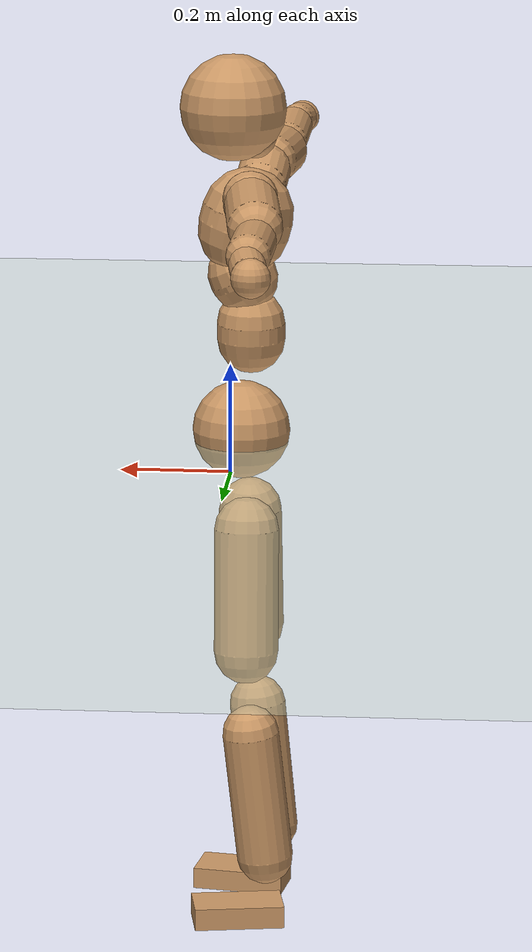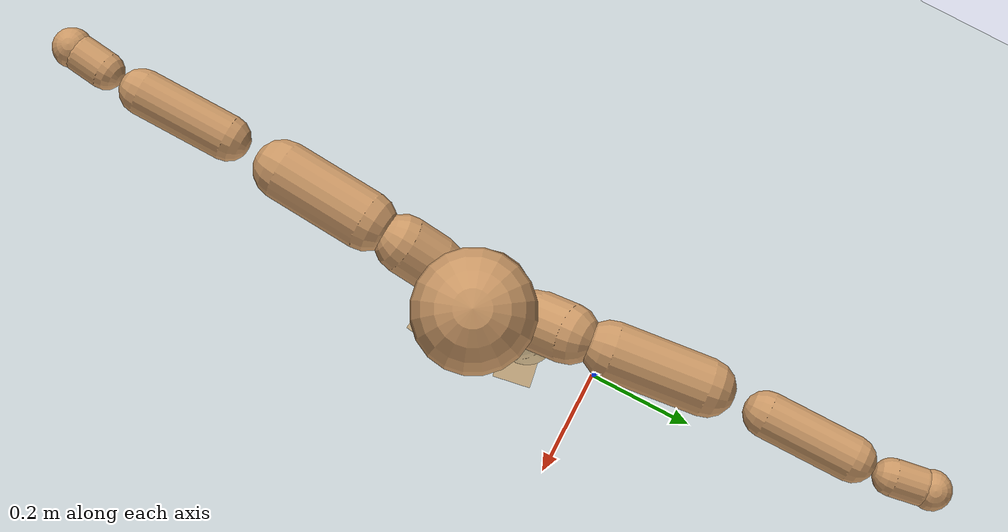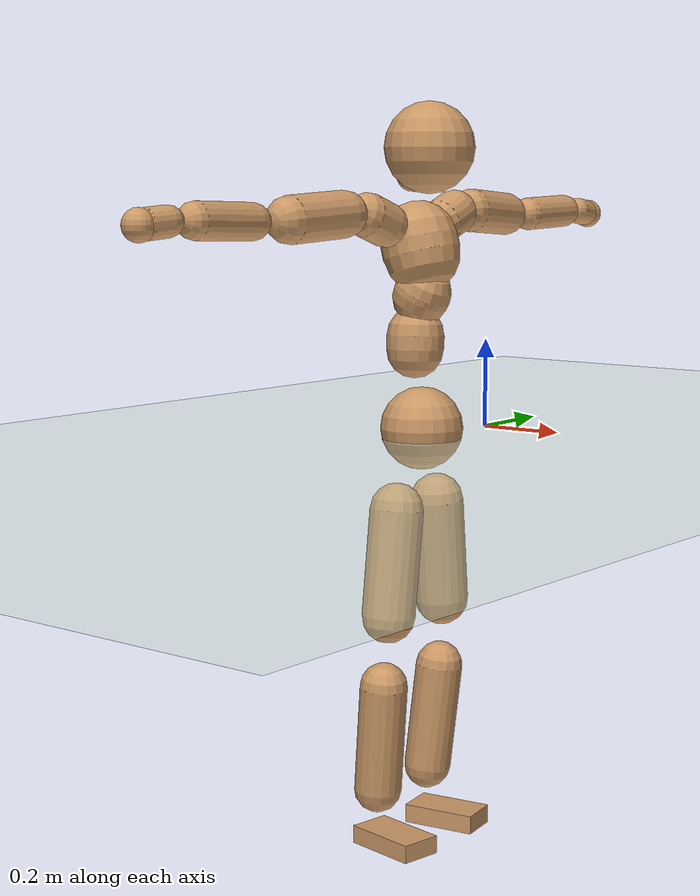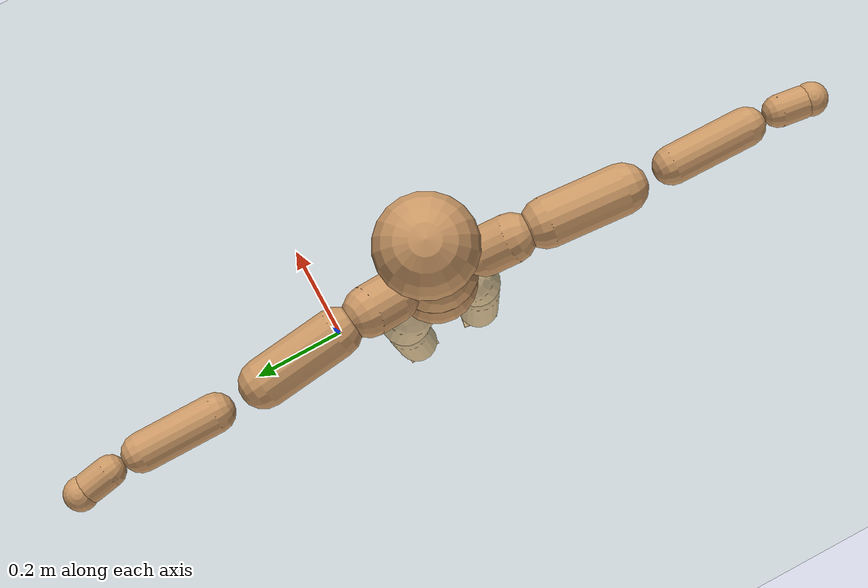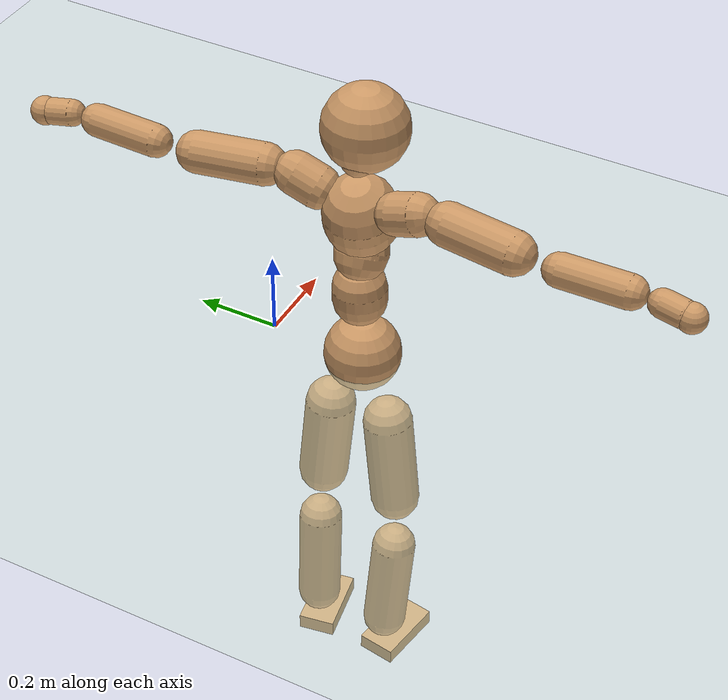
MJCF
<mujoco model="humanoid">
  <compiler coordinate="local"/>
  <default>
    <joint damping="0.0" armature="0.01" stiffness="0.0" limited="true"/>
    <geom conaffinity="1" condim="3" contype="7" margin="0.001" rgba="0.8 0.6 .4 1"/>
  </default>
  <asset>
    <texture type="skybox" builtin="gradient" rgb1=".4 .5 .6" rgb2="0 0 0" width="100" height="100"/>
    <texture builtin="flat" height="1278" mark="cross" markrgb="1 1 1" name="texgeom" random="0.01" rgb1="0.8 0.6 0.4" rgb2="0.8 0.6 0.4" type="cube" width="127"/>
    <texture builtin="checker" height="100" name="texplane" rgb1="0 0 0" rgb2="0.8 0.8 0.8" type="2d" width="100"/>
    <material name="MatPlane" reflectance="0.5" shininess="1" specular="1" texrepeat="60 60" texture="texplane"/>
    <material name="geom" texture="texgeom" texuniform="true"/>
  </asset>
  <worldbody>
    <light cutoff="100" diffuse="1 1 1" dir="-0 0 -1.3" directional="true" exponent="1" pos="0 0 1.3" specular=".1 .1 .1"/>
    <geom conaffinity="1" condim="3" name="floor" pos="0 0 0" rgba="0.8 0.9 0.8 1" size="100 100 .2" type="plane" material="MatPlane"/>
    <body name="Pelvis" pos="-0.0029 -0.2372 0.0203">
      <freejoint name="Pelvis"/>
      <geom type="sphere" contype="1" conaffinity="1" density="500" size="0.0918" pos="0.0000 0.0000 0.0000" name="Pelvis"/>
      <body name="L_Hip" pos="-0.015 0.0692 -0.0957">
        <joint name="L_Hip_x" type="hinge" pos="0 0 0" axis="1 0 0" stiffness="800" damping="80" armature="0.02" range="-180.0000 180.0000"/>
        <joint name="L_Hip_y" type="hinge" pos="0 0 0" axis="0 1 0" stiffness="800" damping="80" armature="0.02" range="-180.0000 180.0000"/>
        <joint name="L_Hip_z" type="hinge" pos="0 0 0" axis="0 0 1" stiffness="800" damping="80" armature="0.02" range="-180.0000 180.0000"/>
        <geom type="capsule" contype="1" conaffinity="1" density="500" fromto="-0.0003 0.0071 -0.0777 -0.0014 0.0286 -0.3109" size="0.0603" name="L_Hip"/>
        <body name="L_Knee" pos="-0.0017 0.0357 -0.3886">
          <joint name="L_Knee_x" type="hinge" pos="0 0 0" axis="1 0 0" stiffness="800" damping="80" armature="0.02" range="-180.0000 180.0000"/>
          <joint name="L_Knee_y" type="hinge" pos="0 0 0" axis="0 1 0" stiffness="800" damping="80" armature="0.02" range="-180.0000 180.0000"/>
          <joint name="L_Knee_z" type="hinge" pos="0 0 0" axis="0 0 1" stiffness="800" damping="80" armature="0.02" range="-180.0000 180.0000"/>
          <geom type="capsule" contype="1" conaffinity="1" density="500" fromto="-0.0091 -0.0028 -0.0824 -0.0363 -0.0110 -0.3294" size="0.0536" name="L_Knee"/>
          <body name="L_Ankle" pos="-0.0453 -0.0138 -0.4118">
            <joint name="L_Ankle_x" type="hinge" pos="0 0 0" axis="1 0 0" stiffness="800" damping="80" armature="0.02" range="-180.0000 180.0000"/>
            <joint name="L_Ankle_y" type="hinge" pos="0 0 0" axis="0 1 0" stiffness="800" damping="80" armature="0.02" range="-180.0000 180.0000"/>
            <joint name="L_Ankle_z" type="hinge" pos="0 0 0" axis="0 0 1" stiffness="800" damping="80" armature="0.02" range="-180.0000 180.0000"/>
            <geom type="box" contype="1" conaffinity="1" density="500" pos="0.0606 0.0101 -0.0288" size="0.0852 0.0457 0.0211" quat="0.9966 0.0000 0.0000 0.0826" name="L_Ankle"/>
            <body name="L_Toe" pos="0.1212 0.0202 -0.0576">
              <joint name="L_Toe_x" type="hinge" pos="0 0 0" axis="1 0 0" stiffness="500" damping="50" armature="0.02" range="-180.0000 180.0000"/>
              <joint name="L_Toe_y" type="hinge" pos="0 0 0" axis="0 1 0" stiffness="500" damping="50" armature="0.02" range="-180.0000 180.0000"/>
              <joint name="L_Toe_z" type="hinge" pos="0 0 0" axis="0 0 1" stiffness="500" damping="50" armature="0.02" range="-180.0000 180.0000"/>
              <geom type="box" contype="1" conaffinity="1" density="500" pos="0.0000 0.0000 0.0286" size="0.0009 0.0023 0.001" quat="0.9960 0.0000 0.0000 0.0892" name="L_Toe"/>
            </body>
          </body>
        </body>
      </body>
      <body name="R_Hip" pos="-0.0108 -0.0658 -0.0949">
        <joint name="R_Hip_x" type="hinge" pos="0 0 0" axis="1 0 0" stiffness="800" damping="80" armature="0.02" range="-180.0000 180.0000"/>
        <joint name="R_Hip_y" type="hinge" pos="0 0 0" axis="0 1 0" stiffness="800" damping="80" armature="0.02" range="-180.0000 180.0000"/>
        <joint name="R_Hip_z" type="hinge" pos="0 0 0" axis="0 0 1" stiffness="800" damping="80" armature="0.02" range="-180.0000 180.0000"/>
        <geom type="capsule" contype="1" conaffinity="1" density="500" fromto="-0.0011 -0.0084 -0.0793 -0.0044 -0.0337 -0.3172" size="0.0594" name="R_Hip"/>
        <body name="R_Knee" pos="-0.0055 -0.0421 -0.3965">
          <joint name="R_Knee_x" type="hinge" pos="0 0 0" axis="1 0 0" stiffness="800" damping="80" armature="0.02" range="-180.0000 180.0000"/>
          <joint name="R_Knee_y" type="hinge" pos="0 0 0" axis="0 1 0" stiffness="800" damping="80" armature="0.02" range="-180.0000 180.0000"/>
          <joint name="R_Knee_z" type="hinge" pos="0 0 0" axis="0 0 1" stiffness="800" damping="80" armature="0.02" range="-180.0000 180.0000"/>
          <geom type="capsule" contype="1" conaffinity="1" density="500" fromto="-0.0085 0.0033 -0.0819 -0.0339 0.0131 -0.3276" size="0.0538" name="R_Knee"/>
          <body name="R_Ankle" pos="-0.0424 0.0164 -0.4095">
            <joint name="R_Ankle_x" type="hinge" pos="0 0 0" axis="1 0 0" stiffness="800" damping="80" armature="0.02" range="-180.0000 180.0000"/>
            <joint name="R_Ankle_y" type="hinge" pos="0 0 0" axis="0 1 0" stiffness="800" damping="80" armature="0.02" range="-180.0000 180.0000"/>
            <joint name="R_Ankle_z" type="hinge" pos="0 0 0" axis="0 0 1" stiffness="800" damping="80" armature="0.02" range="-180.0000 180.0000"/>
            <geom type="box" contype="1" conaffinity="1" density="500" pos="0.0623 -0.0098 -0.0248" size="0.087 0.0473 0.0203" quat="0.9970 0.0000 0.0000 -0.0780" name="R_Ankle"/>
            <body name="R_Toe" pos="0.1246 -0.0196 -0.0495">
              <joint name="R_Toe_x" type="hinge" pos="0 0 0" axis="1 0 0" stiffness="500" damping="50" armature="0.02" range="-180.0000 180.0000"/>
              <joint name="R_Toe_y" type="hinge" pos="0 0 0" axis="0 1 0" stiffness="500" damping="50" armature="0.02" range="-180.0000 180.0000"/>
              <joint name="R_Toe_z" type="hinge" pos="0 0 0" axis="0 0 1" stiffness="500" damping="50" armature="0.02" range="-180.0000 180.0000"/>
              <geom type="box" contype="1" conaffinity="1" density="500" pos="0.0000 0.0000 0.0277" size="0.0009 0.0023 0.0012" quat="0.9976 0.0000 0.0000 -0.0690" name="R_Toe"/>
            </body>
          </body>
        </body>
      </body>
      <body name="Torso" pos="-0.0177 -0.0038 0.1116">
        <joint name="Torso_x" type="hinge" pos="0 0 0" axis="1 0 0" stiffness="1000" damping="100" armature="0.02" range="-180.0000 180.0000"/>
        <joint name="Torso_y" type="hinge" pos="0 0 0" axis="0 1 0" stiffness="1000" damping="100" armature="0.02" range="-180.0000 180.0000"/>
        <joint name="Torso_z" type="hinge" pos="0 0 0" axis="0 0 1" stiffness="1000" damping="100" armature="0.02" range="-180.0000 180.0000"/>
        <geom type="capsule" contype="1" conaffinity="1" density="500" fromto="0.0000 0.0035 0.0931 0.0000 0.0023 0.0620" size="0.063705" name="Torso"/>
        <body name="Spine" pos="0 0.0058 0.1551">
          <joint name="Spine_x" type="hinge" pos="0 0 0" axis="1 0 0" stiffness="1000" damping="100" armature="0.02" range="-180.0000 180.0000"/>
          <joint name="Spine_y" type="hinge" pos="0 0 0" axis="0 1 0" stiffness="1000" damping="100" armature="0.02" range="-180.0000 180.0000"/>
          <joint name="Spine_z" type="hinge" pos="0 0 0" axis="0 0 1" stiffness="1000" damping="100" armature="0.02" range="-180.0000 180.0000"/>
          <geom type="capsule" contype="1" conaffinity="1" density="500" fromto="0.0182 0.0014 0.0325 0.0121 0.0009 0.0216" size="0.062868" name="Spine"/>
          <body name="Chest" pos="0.0303 0.0024 0.0541">
            <joint name="Chest_x" type="hinge" pos="0 0 0" axis="1 0 0" stiffness="1000" damping="100" armature="0.02" range="-180.0000 180.0000"/>
            <joint name="Chest_y" type="hinge" pos="0 0 0" axis="0 1 0" stiffness="1000" damping="100" armature="0.02" range="-180.0000 180.0000"/>
            <joint name="Chest_z" type="hinge" pos="0 0 0" axis="0 0 1" stiffness="1000" damping="100" armature="0.02" range="-180.0000 180.0000"/>
            <geom type="capsule" contype="1" conaffinity="1" density="500" fromto="-0.0243 -0.0008 0.0919 -0.0162 -0.0006 0.0613" size="0.085281" name="Chest"/>
            <body name="Neck" pos="-0.0481 -0.0033 0.2195">
              <joint name="Neck_x" type="hinge" pos="0 0 0" axis="1 0 0" stiffness="500" damping="50" armature="0.02" range="-180.0000 180.0000"/>
              <joint name="Neck_y" type="hinge" pos="0 0 0" axis="0 1 0" stiffness="500" damping="50" armature="0.02" range="-180.0000 180.0000"/>
              <joint name="Neck_z" type="hinge" pos="0 0 0" axis="0 0 1" stiffness="500" damping="50" armature="0.02" range="-180.0000 180.0000"/>
              <geom type="capsule" contype="1" conaffinity="1" density="500" fromto="0.0102 0.0009 0.0139 0.0410 0.0035 0.0555" size="0.038595" name="Neck"/>
              <body name="Head" pos="0.0512 0.0043 0.0694">
                <joint name="Head_x" type="hinge" pos="0 0 0" axis="1 0 0" stiffness="500" damping="50" armature="0.02" range="-180.0000 180.0000"/>
                <joint name="Head_y" type="hinge" pos="0 0 0" axis="0 1 0" stiffness="500" damping="50" armature="0.02" range="-180.0000 180.0000"/>
                <joint name="Head_z" type="hinge" pos="0 0 0" axis="0 0 1" stiffness="500" damping="50" armature="0.02" range="-180.0000 180.0000"/>
                <geom type="sphere" contype="1" conaffinity="1" density="500" size="0.0988" pos="0.0000 0.0000 0.0000" name="Head"/>
              </body>
            </body>
            <body name="L_Thorax" pos="-0.0343 0.0771 0.1215">
              <joint name="L_Thorax_x" type="hinge" pos="0 0 0" axis="1 0 0" stiffness="500" damping="50" armature="0.02" range="-180.0000 180.0000"/>
              <joint name="L_Thorax_y" type="hinge" pos="0 0 0" axis="0 1 0" stiffness="500" damping="50" armature="0.02" range="-180.0000 180.0000"/>
              <joint name="L_Thorax_z" type="hinge" pos="0 0 0" axis="0 0 1" stiffness="500" damping="50" armature="0.02" range="-180.0000 180.0000"/>
              <geom type="capsule" contype="1" conaffinity="1" density="500" fromto="-0.0012 0.0178 0.0067 -0.0047 0.0711 0.0270" size="0.0504" name="L_Thorax"/>
              <body name="L_Shoulder" pos="-0.0059 0.0889 0.0337">
                <joint name="L_Shoulder_x" type="hinge" pos="0 0 0" axis="1 0 0" stiffness="500" damping="50" armature="0.02" range="-720.0000 720.0000"/>
                <joint name="L_Shoulder_y" type="hinge" pos="0 0 0" axis="0 1 0" stiffness="500" damping="50" armature="0.02" range="-720.0000 720.0000"/>
                <joint name="L_Shoulder_z" type="hinge" pos="0 0 0" axis="0 0 1" stiffness="500" damping="50" armature="0.02" range="-720.0000 720.0000"/>
                <geom type="capsule" contype="1" conaffinity="1" density="500" fromto="-0.0060 0.0541 -0.0034 -0.0238 0.2164 -0.0137" size="0.0489" name="L_Shoulder"/>
                <body name="L_Elbow" pos="-0.0298 0.2705 -0.0171">
                  <joint name="L_Elbow_x" type="hinge" pos="0 0 0" axis="1 0 0" stiffness="500" damping="50" armature="0.02" range="-720.0000 720.0000"/>
                  <joint name="L_Elbow_y" type="hinge" pos="0 0 0" axis="0 1 0" stiffness="500" damping="50" armature="0.02" range="-720.0000 720.0000"/>
                  <joint name="L_Elbow_z" type="hinge" pos="0 0 0" axis="0 0 1" stiffness="500" damping="50" armature="0.02" range="-720.0000 720.0000"/>
                  <geom type="capsule" contype="1" conaffinity="1" density="500" fromto="0.0001 0.0512 0.0018 0.0003 0.2047 0.0072" size="0.0385" name="L_Elbow"/>
                  <body name="L_Wrist" pos="0.0004 0.2559 0.009">
                    <joint name="L_Wrist_x" type="hinge" pos="0 0 0" axis="1 0 0" stiffness="300" damping="30" armature="0.02" range="-180.0000 180.0000"/>
                    <joint name="L_Wrist_y" type="hinge" pos="0 0 0" axis="0 1 0" stiffness="300" damping="30" armature="0.02" range="-180.0000 180.0000"/>
                    <joint name="L_Wrist_z" type="hinge" pos="0 0 0" axis="0 0 1" stiffness="300" damping="30" armature="0.02" range="-180.0000 180.0000"/>
                    <geom type="capsule" contype="1" conaffinity="1" density="500" fromto="-0.0028 0.0168 -0.0021 -0.0112 0.0672 -0.0083" size="0.0314" name="L_Wrist"/>
                    <body name="L_Hand" pos="-0.0139 0.084 -0.0104">
                      <joint name="L_Hand_x" type="hinge" pos="0 0 0" axis="1 0 0" stiffness="300" damping="30" armature="0.02" range="-180.0000 180.0000"/>
                      <joint name="L_Hand_y" type="hinge" pos="0 0 0" axis="0 1 0" stiffness="300" damping="30" armature="0.02" range="-180.0000 180.0000"/>
                      <joint name="L_Hand_z" type="hinge" pos="0 0 0" axis="0 0 1" stiffness="300" damping="30" armature="0.02" range="-180.0000 180.0000"/>
                      <geom type="sphere" contype="1" conaffinity="1" density="500" size="0.0338" pos="0.0000 0.0000 0.0000" name="L_Hand"/>
                    </body>
                  </body>
                </body>
              </body>
            </body>
            <body name="R_Thorax" pos="-0.0389 -0.0779 0.1187">
              <joint name="R_Thorax_x" type="hinge" pos="0 0 0" axis="1 0 0" stiffness="500" damping="50" armature="0.02" range="-180.0000 180.0000"/>
              <joint name="R_Thorax_y" type="hinge" pos="0 0 0" axis="0 1 0" stiffness="500" damping="50" armature="0.02" range="-180.0000 180.0000"/>
              <joint name="R_Thorax_z" type="hinge" pos="0 0 0" axis="0 0 1" stiffness="500" damping="50" armature="0.02" range="-180.0000 180.0000"/>
              <geom type="capsule" contype="1" conaffinity="1" density="500" fromto="-0.0016 -0.0185 0.0068 -0.0062 -0.0741 0.0273" size="0.0488" name="R_Thorax"/>
              <body name="R_Shoulder" pos="-0.0078 -0.0927 0.0341">
                <joint name="R_Shoulder_x" type="hinge" pos="0 0 0" axis="1 0 0" stiffness="500" damping="50" armature="0.02" range="-720.0000 720.0000"/>
                <joint name="R_Shoulder_y" type="hinge" pos="0 0 0" axis="0 1 0" stiffness="500" damping="50" armature="0.02" range="-720.0000 720.0000"/>
                <joint name="R_Shoulder_z" type="hinge" pos="0 0 0" axis="0 0 1" stiffness="500" damping="50" armature="0.02" range="-720.0000 720.0000"/>
                <geom type="capsule" contype="1" conaffinity="1" density="500" fromto="-0.0038 -0.0524 -0.0032 -0.0153 -0.2095 -0.0127" size="0.0501" name="R_Shoulder"/>
                <body name="R_Elbow" pos="-0.0192 -0.2619 -0.0159">
                  <joint name="R_Elbow_x" type="hinge" pos="0 0 0" axis="1 0 0" stiffness="500" damping="50" armature="0.02" range="-720.0000 720.0000"/>
                  <joint name="R_Elbow_y" type="hinge" pos="0 0 0" axis="0 1 0" stiffness="500" damping="50" armature="0.02" range="-720.0000 720.0000"/>
                  <joint name="R_Elbow_z" type="hinge" pos="0 0 0" axis="0 0 1" stiffness="500" damping="50" armature="0.02" range="-720.0000 720.0000"/>
                  <geom type="capsule" contype="1" conaffinity="1" density="500" fromto="-0.0009 -0.0521 0.0015 -0.0036 -0.2085 0.0060" size="0.0383" name="R_Elbow"/>
                  <body name="R_Wrist" pos="-0.0045 -0.2607 0.0076">
                    <joint name="R_Wrist_x" type="hinge" pos="0 0 0" axis="1 0 0" stiffness="300" damping="30" armature="0.02" range="-180.0000 180.0000"/>
                    <joint name="R_Wrist_y" type="hinge" pos="0 0 0" axis="0 1 0" stiffness="300" damping="30" armature="0.02" range="-180.0000 180.0000"/>
                    <joint name="R_Wrist_z" type="hinge" pos="0 0 0" axis="0 0 1" stiffness="300" damping="30" armature="0.02" range="-180.0000 180.0000"/>
                    <geom type="capsule" contype="1" conaffinity="1" density="500" fromto="-0.0021 -0.0167 -0.0015 -0.0085 -0.0667 -0.0059" size="0.0315" name="R_Wrist"/>
                    <body name="R_Hand" pos="-0.0107 -0.0833 -0.0074">
                      <joint name="R_Hand_x" type="hinge" pos="0 0 0" axis="1 0 0" stiffness="300" damping="30" armature="0.02" range="-180.0000 180.0000"/>
                      <joint name="R_Hand_y" type="hinge" pos="0 0 0" axis="0 1 0" stiffness="300" damping="30" armature="0.02" range="-180.0000 180.0000"/>
                      <joint name="R_Hand_z" type="hinge" pos="0 0 0" axis="0 0 1" stiffness="300" damping="30" armature="0.02" range="-180.0000 180.0000"/>
                      <geom type="sphere" contype="1" conaffinity="1" density="500" size="0.0333" pos="0.0000 0.0000 0.0000" name="R_Hand"/>
                    </body>
                  </body>
                </body>
              </body>
            </body>
          </body>
        </body>
      </body>
    </body>
  </worldbody>
  <actuator>
    <motor name="L_Hip_x" joint="L_Hip_x" gear="500"/>
    <motor name="L_Hip_y" joint="L_Hip_y" gear="500"/>
    <motor name="L_Hip_z" joint="L_Hip_z" gear="500"/>
    <motor name="L_Knee_x" joint="L_Knee_x" gear="500"/>
    <motor name="L_Knee_y" joint="L_Knee_y" gear="500"/>
    <motor name="L_Knee_z" joint="L_Knee_z" gear="500"/>
    <motor name="L_Ankle_x" joint="L_Ankle_x" gear="500"/>
    <motor name="L_Ankle_y" joint="L_Ankle_y" gear="500"/>
    <motor name="L_Ankle_z" joint="L_Ankle_z" gear="500"/>
    <motor name="L_Toe_x" joint="L_Toe_x" gear="500"/>
    <motor name="L_Toe_y" joint="L_Toe_y" gear="500"/>
    <motor name="L_Toe_z" joint="L_Toe_z" gear="500"/>
    <motor name="R_Hip_x" joint="R_Hip_x" gear="500"/>
    <motor name="R_Hip_y" joint="R_Hip_y" gear="500"/>
    <motor name="R_Hip_z" joint="R_Hip_z" gear="500"/>
    <motor name="R_Knee_x" joint="R_Knee_x" gear="500"/>
    <motor name="R_Knee_y" joint="R_Knee_y" gear="500"/>
    <motor name="R_Knee_z" joint="R_Knee_z" gear="500"/>
    <motor name="R_Ankle_x" joint="R_Ankle_x" gear="500"/>
    <motor name="R_Ankle_y" joint="R_Ankle_y" gear="500"/>
    <motor name="R_Ankle_z" joint="R_Ankle_z" gear="500"/>
    <motor name="R_Toe_x" joint="R_Toe_x" gear="500"/>
    <motor name="R_Toe_y" joint="R_Toe_y" gear="500"/>
    <motor name="R_Toe_z" joint="R_Toe_z" gear="500"/>
    <motor name="Torso_x" joint="Torso_x" gear="500"/>
    <motor name="Torso_y" joint="Torso_y" gear="500"/>
    <motor name="Torso_z" joint="Torso_z" gear="500"/>
    <motor name="Spine_x" joint="Spine_x" gear="500"/>
    <motor name="Spine_y" joint="Spine_y" gear="500"/>
    <motor name="Spine_z" joint="Spine_z" gear="500"/>
    <motor name="Chest_x" joint="Chest_x" gear="500"/>
    <motor name="Chest_y" joint="Chest_y" gear="500"/>
    <motor name="Chest_z" joint="Chest_z" gear="500"/>
    <motor name="Neck_x" joint="Neck_x" gear="500"/>
    <motor name="Neck_y" joint="Neck_y" gear="500"/>
    <motor name="Neck_z" joint="Neck_z" gear="500"/>
    <motor name="Head_x" joint="Head_x" gear="500"/>
    <motor name="Head_y" joint="Head_y" gear="500"/>
    <motor name="Head_z" joint="Head_z" gear="500"/>
    <motor name="L_Thorax_x" joint="L_Thorax_x" gear="500"/>
    <motor name="L_Thorax_y" joint="L_Thorax_y" gear="500"/>
    <motor name="L_Thorax_z" joint="L_Thorax_z" gear="500"/>
    <motor name="L_Shoulder_x" joint="L_Shoulder_x" gear="500"/>
    <motor name="L_Shoulder_y" joint="L_Shoulder_y" gear="500"/>
    <motor name="L_Shoulder_z" joint="L_Shoulder_z" gear="500"/>
    <motor name="L_Elbow_x" joint="L_Elbow_x" gear="500"/>
    <motor name="L_Elbow_y" joint="L_Elbow_y" gear="500"/>
    <motor name="L_Elbow_z" joint="L_Elbow_z" gear="500"/>
    <motor name="L_Wrist_x" joint="L_Wrist_x" gear="500"/>
    <motor name="L_Wrist_y" joint="L_Wrist_y" gear="500"/>
    <motor name="L_Wrist_z" joint="L_Wrist_z" gear="500"/>
    <motor name="L_Hand_x" joint="L_Hand_x" gear="500"/>
    <motor name="L_Hand_y" joint="L_Hand_y" gear="500"/>
    <motor name="L_Hand_z" joint="L_Hand_z" gear="500"/>
    <motor name="R_Thorax_x" joint="R_Thorax_x" gear="500"/>
    <motor name="R_Thorax_y" joint="R_Thorax_y" gear="500"/>
    <motor name="R_Thorax_z" joint="R_Thorax_z" gear="500"/>
    <motor name="R_Shoulder_x" joint="R_Shoulder_x" gear="500"/>
    <motor name="R_Shoulder_y" joint="R_Shoulder_y" gear="500"/>
    <motor name="R_Shoulder_z" joint="R_Shoulder_z" gear="500"/>
    <motor name="R_Elbow_x" joint="R_Elbow_x" gear="500"/>
    <motor name="R_Elbow_y" joint="R_Elbow_y" gear="500"/>
    <motor name="R_Elbow_z" joint="R_Elbow_z" gear="500"/>
    <motor name="R_Wrist_x" joint="R_Wrist_x" gear="500"/>
    <motor name="R_Wrist_y" joint="R_Wrist_y" gear="500"/>
    <motor name="R_Wrist_z" joint="R_Wrist_z" gear="500"/>
    <motor name="R_Hand_x" joint="R_Hand_x" gear="500"/>
    <motor name="R_Hand_y" joint="R_Hand_y" gear="500"/>
    <motor name="R_Hand_z" joint="R_Hand_z" gear="500"/>
  </actuator>
  <contact>
    <exclude body1="Torso" body2="Chest"/>
    <exclude body1="Head" body2="Chest"/>
    <exclude body1="R_Knee" body2="R_Toe"/>
    <exclude body1="R_Knee" body2="L_Ankle"/>
    <exclude body1="R_Knee" body2="L_Toe"/>
    <exclude body1="L_Knee" body2="L_Toe"/>
    <exclude body1="L_Knee" body2="R_Ankle"/>
    <exclude body1="L_Knee" body2="R_Toe"/>
    <exclude body1="L_Shoulder" body2="Chest"/>
    <exclude body1="R_Shoulder" body2="Chest"/>
  </contact>
  <sensor/>
  <size njmax="700" nconmax="700"/>
</mujoco>
